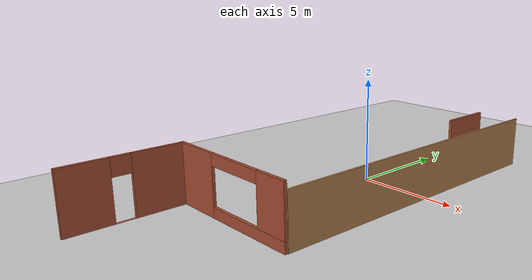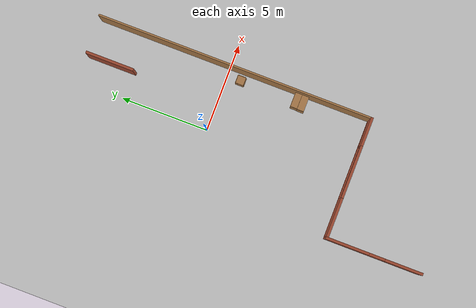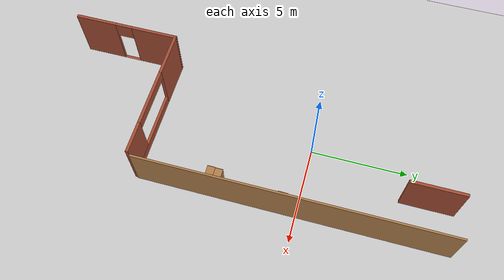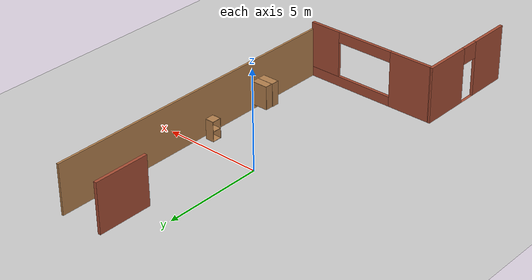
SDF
<sdf version="1.6">
 <world name="default">
  <model name="ground_plane">
   <static>1</static>
   <link name="link">
    <collision name="collision">
     <geometry><plane><normal>0 0 1</normal><size>100 100</size></plane></geometry>
     <friction><ode><mu>100</mu><mu2>50</mu2></ode></friction>
    </collision>
    <visual name="visual">
     <cast_shadows>0</cast_shadows>
     <geometry><plane><normal>0 0 1</normal><size>100 100</size></plane></geometry>
     <material>
      <script><uri>file://media/materials/scripts/gazebo.material</uri><name>Gazebo/Grey</name></script>
     </material>
    </visual>
   </link>
  </model>
  <gravity>0 0 -9.8</gravity>
  <magnetic_field>6e-06 2.3e-05 -4.2e-05</magnetic_field>
  <atmosphere type="adiabatic"/>
  <physics name="default_physics" default="0" type="ode">
   <real_time_update_rate>250</real_time_update_rate>
   <max_step_size>0.004</max_step_size>
   <real_time_factor>1</real_time_factor>
   <ode>
    <solver>
     <type>quick</type>
     <iters>150</iters>
     <precon_iters>0</precon_iters>
     <sor>1.4</sor>
     <use_dynamic_moi_rescaling>1</use_dynamic_moi_rescaling>
    </solver>
    <constraints>
     <cfm>1e-05</cfm>
     <erp>0.2</erp>
     <contact_max_correcting_vel>2000</contact_max_correcting_vel>
     <contact_surface_layer>0.01</contact_surface_layer>
    </constraints>
   </ode>
  </physics>
  <scene><ambient>0.4 0.4 0.4 1</ambient><background>0.7 0.7 0.7 1</background><shadows>1</shadows></scene>
  <spherical_coordinates>
   <surface_model>EARTH_WGS84</surface_model>
   <latitude_deg>25.0676548</latitude_deg>
   <longitude_deg>121.4563823</longitude_deg>
   <elevation>17.0</elevation>
   <heading_deg>0</heading_deg>
  </spherical_coordinates>
  <model name="cafe_room">
   <pose>0.165031 -6.85753 0 0 -0 0</pose>
   <link name="Wall_0">
    <pose>3.8e-05 -1.36625 0 0 -0 0.000649</pose>
    <visual name="Wall_0_Visual_0">
     <pose>-2.31327 0 1.425 0 -0 0</pose>
     <geometry><box><size>2.37346 0.15 2.85</size></box></geometry>
     <material>
      <script><uri>file://media/materials/scripts/gazebo.material</uri><name>Gazebo/Bricks</name></script>
      <ambient>0.309804 0.309804 0.309804 1</ambient>
     </material>
     <meta><layer>0</layer></meta>
    </visual>
    <collision name="Wall_0_Collision_0">
     <geometry><box><size>2.37346 0.15 2.85</size></box></geometry>
     <pose>-2.31327 0 1.425 0 -0 0</pose>
    </collision>
    <visual name="Wall_0_Visual_1">
     <pose>1.18673 0 0.25 0 -0 0</pose>
     <geometry><box><size>4.62654 0.15 0.5</size></box></geometry>
     <material>
      <script><uri>file://media/materials/scripts/gazebo.material</uri><name>Gazebo/Bricks</name></script>
      <ambient>0.309804 0.309804 0.309804 1</ambient>
     </material>
     <meta><layer>0</layer></meta>
    </visual>
    <collision name="Wall_0_Collision_1">
     <geometry><box><size>4.62654 0.15 0.5</size></box></geometry>
     <pose>1.18673 0 0.25 0 -0 0</pose>
    </collision>
    <visual name="Wall_0_Visual_2">
     <pose>2.68673 0 1.675 0 -0 0</pose>
     <geometry><box><size>1.62654 0.15 2.35</size></box></geometry>
     <material>
      <script><uri>file://media/materials/scripts/gazebo.material</uri><name>Gazebo/Bricks</name></script>
      <ambient>0.309804 0.309804 0.309804 1</ambient>
     </material>
     <meta><layer>0</layer></meta>
    </visual>
    <collision name="Wall_0_Collision_2">
     <geometry><box><size>1.62654 0.15 2.35</size></box></geometry>
     <pose>2.68673 0 1.675 0 -0 0</pose>
    </collision>
    <visual name="Wall_0_Visual_3">
     <pose>0.37346 0 2.575 0 -0 0</pose>
     <geometry><box><size>3 0.15 0.55</size></box></geometry>
     <material>
      <script><uri>file://media/materials/scripts/gazebo.material</uri><name>Gazebo/Bricks</name></script>
      <ambient>0.309804 0.309804 0.309804 1</ambient>
     </material>
     <meta><layer>0</layer></meta>
    </visual>
    <collision name="Wall_0_Collision_3">
     <geometry><box><size>3 0.15 0.55</size></box></geometry>
     <pose>0.37346 0 2.575 0 -0 0</pose>
    </collision>
   </link>
   <link name="Wall_3">
    <pose>-3.42303 -4.07547 0 0 -0 -1.57006</pose>
    <visual name="Wall_3_Visual_0">
     <pose>-1.53914 0 1.425 0 -0 0</pose>
     <geometry><box><size>2.48571 0.15 2.85</size></box></geometry>
     <material>
      <script><uri>file://media/materials/scripts/gazebo.material</uri><name>Gazebo/Bricks</name></script>
      <ambient>0.309804 0.309804 0.309804 1</ambient>
     </material>
     <meta><layer>0</layer></meta>
    </visual>
    <collision name="Wall_3_Collision_0">
     <geometry><box><size>2.48571 0.15 2.85</size></box></geometry>
     <pose>-1.53914 0 1.425 0 -0 0</pose>
    </collision>
    <visual name="Wall_3_Visual_1">
     <pose>1.69286 0 1.425 0 -0 0</pose>
     <geometry><box><size>2.17829 0.15 2.85</size></box></geometry>
     <material>
      <script><uri>file://media/materials/scripts/gazebo.material</uri><name>Gazebo/Bricks</name></script>
      <ambient>0.309804 0.309804 0.309804 1</ambient>
     </material>
     <meta><layer>0</layer></meta>
    </visual>
    <collision name="Wall_3_Collision_1">
     <geometry><box><size>2.17829 0.15 2.85</size></box></geometry>
     <pose>1.69286 0 1.425 0 -0 0</pose>
    </collision>
    <visual name="Wall_3_Visual_2">
     <pose>0.153711 0 0 0 -0 0</pose>
     <geometry><box><size>0.9 0.15 0</size></box></geometry>
     <material>
      <script><uri>file://media/materials/scripts/gazebo.material</uri><name>Gazebo/Bricks</name></script>
      <ambient>0.309804 0.309804 0.309804 1</ambient>
     </material>
     <meta><layer>0</layer></meta>
    </visual>
    <collision name="Wall_3_Collision_2">
     <geometry><box><size>0.9 0.15 0</size></box></geometry>
     <pose>0.153711 0 0 0 -0 0</pose>
    </collision>
    <visual name="Wall_3_Visual_3">
     <pose>0.153711 0 2.425 0 -0 0</pose>
     <geometry><box><size>0.9 0.15 0.85</size></box></geometry>
     <material>
      <script><uri>file://media/materials/scripts/gazebo.material</uri><name>Gazebo/Bricks</name></script>
      <ambient>0.309804 0.309804 0.309804 1</ambient>
     </material>
     <meta><layer>0</layer></meta>
    </visual>
    <collision name="Wall_3_Collision_3">
     <geometry><box><size>0.9 0.15 0.85</size></box></geometry>
     <pose>0.153711 0 2.425 0 -0 0</pose>
    </collision>
   </link>
   <static>1</static>
  </model>
  <light name="user_directional_light_1" type="directional">
   <pose>69.4265 -45.3011 1 0 -0 0</pose>
   <diffuse>0.5 0.5 0.5 1</diffuse>
   <specular>0.1 0.1 0.1 1</specular>
   <direction>0.1 0.1 -0.9</direction>
   <attenuation>
    <range>20</range>
    <constant>0.5</constant>
    <linear>0.01</linear>
    <quadratic>0.001</quadratic>
   </attenuation>
  </light>
  <light name="user_point_light_0" type="point">
   <pose>-1.19379 -7.98022 1 0 -0 0</pose>
   <diffuse>0.5 0.5 0.5 1</diffuse>
   <specular>0.1 0.1 0.1 1</specular>
   <attenuation>
    <range>20</range>
    <constant>0.5</constant>
    <linear>0.01</linear>
    <quadratic>0.001</quadratic>
   </attenuation>
   <cast_shadows>0</cast_shadows>
   <direction>0 0 -1</direction>
  </light>
  <light name="user_point_light_1" type="point">
   <pose>0.766851 -12.0385 1 0 -0 0</pose>
   <diffuse>0.5 0.5 0.5 1</diffuse>
   <specular>0.1 0.1 0.1 1</specular>
   <attenuation>
    <range>20</range>
    <constant>0.5</constant>
    <linear>0.01</linear>
    <quadratic>0.001</quadratic>
   </attenuation>
   <cast_shadows>0</cast_shadows>
   <direction>0 0 -1</direction>
  </light>
  <light name="user_directional_light_2" type="directional">
   <pose>2.85707 -5.47055 1 0 -0 0</pose>
   <diffuse>0.5 0.5 0.5 1</diffuse>
   <specular>0.1 0.1 0.1 1</specular>
   <direction>0.1 0.1 -0.9</direction>
   <attenuation>
    <range>20</range>
    <constant>0.5</constant>
    <linear>0.01</linear>
    <quadratic>0.001</quadratic>
   </attenuation>
  </light>
  <light name="user_point_light_2" type="point">
   <pose>-2.25143 -7.57347 1 0 -0 0</pose>
   <diffuse>0.5 0.5 0.5 1</diffuse>
   <specular>0.1 0.1 0.1 1</specular>
   <attenuation>
    <range>20</range>
    <constant>0.5</constant>
    <linear>0.01</linear>
    <quadratic>0.001</quadratic>
   </attenuation>
   <cast_shadows>0</cast_shadows>
   <direction>0 0 -1</direction>
  </light>
  <light name="user_point_light_3" type="point">
   <pose>2.80305 -7.84683 1 0 -0 0</pose>
   <diffuse>0.5 0.5 0.5 1</diffuse>
   <specular>0.1 0.1 0.1 1</specular>
   <attenuation>
    <range>20</range>
    <constant>0.5</constant>
    <linear>0.01</linear>
    <quadratic>0.001</quadratic>
   </attenuation>
   <cast_shadows>0</cast_shadows>
   <direction>0 0 -1</direction>
  </light>
  <light name="user_directional_light_3" type="directional">
   <pose>-3.4686 -9.00205 1 0 -0 0</pose>
   <diffuse>0.5 0.5 0.5 1</diffuse>
   <specular>0.1 0.1 0.1 1</specular>
   <direction>0.1 0.1 -0.9</direction>
   <attenuation>
    <range>20</range>
    <constant>0.5</constant>
    <linear>0.01</linear>
    <quadratic>0.001</quadratic>
   </attenuation>
  </light>
  <light name="user_directional_light_4" type="directional">
   <pose>2.30045 -0.072071 1 0 -0 0</pose>
   <diffuse>0.5 0.5 0.5 1</diffuse>
   <specular>0.1 0.1 0.1 1</specular>
   <direction>0.1 0.1 -0.9</direction>
   <attenuation>
    <range>20</range>
    <constant>0.5</constant>
    <linear>0.01</linear>
    <quadratic>0.001</quadratic>
   </attenuation>
  </light>
  <light name="user_point_light_4" type="point">
   <pose>0.076075 -5.91752 1 0 -0 0</pose>
   <diffuse>0.5 0.5 0.5 1</diffuse>
   <specular>0.1 0.1 0.1 1</specular>
   <attenuation>
    <range>20</range>
    <constant>0.5</constant>
    <linear>0.01</linear>
    <quadratic>0.001</quadratic>
   </attenuation>
   <cast_shadows>0</cast_shadows>
   <direction>0 0 -1</direction>
  </light>
  <light name="user_point_light_5" type="point">
   <pose>-4.36942 -10.4942 1 0 -0 0</pose>
   <diffuse>0.5 0.5 0.5 1</diffuse>
   <specular>0.1 0.1 0.1 1</specular>
   <attenuation>
    <range>20</range>
    <constant>0.5</constant>
    <linear>0.01</linear>
    <quadratic>0.001</quadratic>
   </attenuation>
   <cast_shadows>0</cast_shadows>
   <direction>0 0 -1</direction>
  </light>
  <light name="user_point_light_6" type="point">
   <pose>-3.92433 -9.26622 1 0 -0 0</pose>
   <diffuse>0.5 0.5 0.5 1</diffuse>
   <specular>0.1 0.1 0.1 1</specular>
   <attenuation>
    <range>20</range>
    <constant>0.5</constant>
    <linear>0.01</linear>
    <quadratic>0.001</quadratic>
   </attenuation>
   <cast_shadows>0</cast_shadows>
   <direction>0 0 -1</direction>
  </light>
  <light name="user_point_light_7" type="point">
   <pose>-3.73468 -12.8798 1 0 -0 0</pose>
   <diffuse>0.5 0.5 0.5 1</diffuse>
   <specular>0.1 0.1 0.1 1</specular>
   <attenuation>
    <range>20</range>
    <constant>0.5</constant>
    <linear>0.01</linear>
    <quadratic>0.001</quadratic>
   </attenuation>
   <cast_shadows>0</cast_shadows>
   <direction>0 0 -1</direction>
  </light>
  <light name="user_point_light_8" type="point">
   <pose>-3.8302 -8.15565 1 0 -0 0</pose>
   <diffuse>0.5 0.5 0.5 1</diffuse>
   <specular>0.1 0.1 0.1 1</specular>
   <attenuation>
    <range>20</range>
    <constant>0.5</constant>
    <linear>0.01</linear>
    <quadratic>0.001</quadratic>
   </attenuation>
   <cast_shadows>0</cast_shadows>
   <direction>0 0 -1</direction>
  </light>
  <model name="bookshelf">
   <static>1</static>
   <link name="link">
    <inertial><mass>1</mass></inertial>
    <collision name="back">
     <pose>0 0.005 0.6 0 -0 0</pose>
     <geometry><box><size>0.9 0.01 1.2</size></box></geometry>
    </collision>
    <visual name="visual1">
     <pose>0 0.005 0.6 0 -0 0</pose>
     <geometry><box><size>0.9 0.01 1.2</size></box></geometry>
     <material>
      <script><uri>file://media/materials/scripts/gazebo.material</uri><name>Gazebo/Wood</name></script>
     </material>
    </visual>
    <collision name="left_side">
     <pose>0.45 -0.195 0.6 0 -0 0</pose>
     <geometry><box><size>0.02 0.4 1.2</size></box></geometry>
    </collision>
    <visual name="visual2">
     <pose>0.45 -0.195 0.6 0 -0 0</pose>
     <geometry><box><size>0.02 0.4 1.2</size></box></geometry>
     <material>
      <script><uri>file://media/materials/scripts/gazebo.material</uri><name>Gazebo/Wood</name></script>
     </material>
    </visual>
    <collision name="right_side">
     <pose>-0.45 -0.195 0.6 0 -0 0</pose>
     <geometry><box><size>0.02 0.4 1.2</size></box></geometry>
    </collision>
    <visual name="visual3">
     <pose>-0.45 -0.195 0.6 0 -0 0</pose>
     <geometry><box><size>0.02 0.4 1.2</size></box></geometry>
     <material>
      <script><uri>file://media/materials/scripts/gazebo.material</uri><name>Gazebo/Wood</name></script>
     </material>
    </visual>
    <collision name="bottom">
     <pose>0 -0.195 0.03 0 -0 0</pose>
     <geometry><box><size>0.88 0.4 0.06</size></box></geometry>
    </collision>
    <visual name="visual4">
     <pose>0 -0.195 0.03 0 -0 0</pose>
     <geometry><box><size>0.88 0.4 0.06</size></box></geometry>
     <material>
      <script><uri>file://media/materials/scripts/gazebo.material</uri><name>Gazebo/Wood</name></script>
     </material>
    </visual>
    <collision name="top">
     <pose>0 -0.195 1.19 0 -0 0</pose>
     <geometry><box><size>0.88 0.4 0.02</size></box></geometry>
    </collision>
    <visual name="visual5">
     <pose>0 -0.195 1.19 0 -0 0</pose>
     <geometry><box><size>0.88 0.4 0.02</size></box></geometry>
     <material>
      <script><uri>file://media/materials/scripts/gazebo.material</uri><name>Gazebo/Wood</name></script>
     </material>
    </visual>
    <collision name="low_shelf">
     <pose>0 -0.195 0.43 0 -0 0</pose>
     <geometry><box><size>0.88 0.4 0.02</size></box></geometry>
    </collision>
    <visual name="visual6">
     <pose>0 -0.195 0.43 0 -0 0</pose>
     <geometry><box><size>0.88 0.4 0.02</size></box></geometry>
     <material>
      <script><uri>file://media/materials/scripts/gazebo.material</uri><name>Gazebo/Wood</name></script>
     </material>
    </visual>
    <collision name="high_shelf">
     <pose>0 -0.195 0.8 0 -0 0</pose>
     <geometry><box><size>0.88 0.4 0.02</size></box></geometry>
    </collision>
    <visual name="visual7">
     <pose>0 -0.195 0.8 0 -0 0</pose>
     <geometry><box><size>0.88 0.4 0.02</size></box></geometry>
     <material>
      <script><uri>file://media/materials/scripts/gazebo.material</uri><name>Gazebo/Wood</name></script>
     </material>
    </visual>
   </link>
   <pose>3.20033 -4.26028 0.271039 0 -0 0</pose>
  </model>
  <model name="bookshelf_clone">
   <static>1</static>
   <link name="link">
    <inertial><mass>1</mass></inertial>
    <collision name="back">
     <pose>0 0.005 0.6 0 -0 0</pose>
     <geometry><box><size>0.9 0.01 1.2</size></box></geometry>
    </collision>
    <visual name="visual1">
     <pose>0 0.005 0.6 0 -0 0</pose>
     <geometry><box><size>0.9 0.01 1.2</size></box></geometry>
     <material>
      <script><uri>file://media/materials/scripts/gazebo.material</uri><name>Gazebo/Wood</name></script>
     </material>
    </visual>
    <collision name="left_side">
     <pose>0.45 -0.195 0.6 0 -0 0</pose>
     <geometry><box><size>0.02 0.4 1.2</size></box></geometry>
    </collision>
    <visual name="visual2">
     <pose>0.45 -0.195 0.6 0 -0 0</pose>
     <geometry><box><size>0.02 0.4 1.2</size></box></geometry>
     <material>
      <script><uri>file://media/materials/scripts/gazebo.material</uri><name>Gazebo/Wood</name></script>
     </material>
    </visual>
    <collision name="right_side">
     <pose>-0.45 -0.195 0.6 0 -0 0</pose>
     <geometry><box><size>0.02 0.4 1.2</size></box></geometry>
    </collision>
    <visual name="visual3">
     <pose>-0.45 -0.195 0.6 0 -0 0</pose>
     <geometry><box><size>0.02 0.4 1.2</size></box></geometry>
     <material>
      <script><uri>file://media/materials/scripts/gazebo.material</uri><name>Gazebo/Wood</name></script>
     </material>
    </visual>
    <collision name="bottom">
     <pose>0 -0.195 0.03 0 -0 0</pose>
     <geometry><box><size>0.88 0.4 0.06</size></box></geometry>
    </collision>
    <visual name="visual4">
     <pose>0 -0.195 0.03 0 -0 0</pose>
     <geometry><box><size>0.88 0.4 0.06</size></box></geometry>
     <material>
      <script><uri>file://media/materials/scripts/gazebo.material</uri><name>Gazebo/Wood</name></script>
     </material>
    </visual>
    <collision name="top">
     <pose>0 -0.195 1.19 0 -0 0</pose>
     <geometry><box><size>0.88 0.4 0.02</size></box></geometry>
    </collision>
    <visual name="visual5">
     <pose>0 -0.195 1.19 0 -0 0</pose>
     <geometry><box><size>0.88 0.4 0.02</size></box></geometry>
     <material>
      <script><uri>file://media/materials/scripts/gazebo.material</uri><name>Gazebo/Wood</name></script>
     </material>
    </visual>
    <collision name="low_shelf">
     <pose>0 -0.195 0.43 0 -0 0</pose>
     <geometry><box><size>0.88 0.4 0.02</size></box></geometry>
    </collision>
    <visual name="visual6">
     <pose>0 -0.195 0.43 0 -0 0</pose>
     <geometry><box><size>0.88 0.4 0.02</size></box></geometry>
     <material>
      <script><uri>file://media/materials/scripts/gazebo.material</uri><name>Gazebo/Wood</name></script>
     </material>
    </visual>
    <collision name="high_shelf">
     <pose>0 -0.195 0.8 0 -0 0</pose>
     <geometry><box><size>0.88 0.4 0.02</size></box></geometry>
    </collision>
    <visual name="visual7">
     <pose>0 -0.195 0.8 0 -0 0</pose>
     <geometry><box><size>0.88 0.4 0.02</size></box></geometry>
     <material>
      <script><uri>file://media/materials/scripts/gazebo.material</uri><name>Gazebo/Wood</name></script>
     </material>
    </visual>
   </link>
   <pose>3.22029 -3.86837 0.271039 0 -0 0</pose>
  </model>
  <model name="cabinet">
   <static>1</static>
   <link name="cabinet_bottom_plate">
    <inertial>
     <pose>0 0 -1 0 -0 0</pose>
     <inertia><ixx>2.05</ixx><ixy>0</ixy><ixz>0</ixz><iyy>2.05</iyy><iyz>0</iyz><izz>2.05</izz></inertia>
     <mass>25</mass>
    </inertial>
    <collision name="cabinet_bottom_plate_geom">
     <pose>0 0 0.01 0 -0 0</pose>
     <geometry><box><size>0.45 0.45 0.02</size></box></geometry>
    </collision>
    <visual name="cabinet_bottom_plate_geom_visual">
     <pose>0 0 0.01 0 -0 0</pose>
     <geometry><box><size>0.45 0.45 0.02</size></box></geometry>
     <material>
      <script><uri>file://media/materials/scripts/gazebo.material</uri><name>Gazebo/Wood</name></script>
     </material>
    </visual>
    <collision name="cabinet_bottom_plate_geom_cabinet_back_plate">
     <pose>0.235 0 0.51 0 -0 0</pose>
     <geometry><box><size>0.02 0.45 1.02</size></box></geometry>
    </collision>
    <visual name="cabinet_bottom_plate_geom_cabinet_back_plate_visual">
     <pose>0.235 0 0.51 0 -0 0</pose>
     <geometry><box><size>0.02 0.45 1.02</size></box></geometry>
     <material>
      <script><uri>file://media/materials/scripts/gazebo.material</uri><name>Gazebo/Wood</name></script>
     </material>
    </visual>
    <collision name="cabinet_bottom_plate_geom_cabinet_left_plate">
     <pose>0 0.235 0.51 0 -0 0</pose>
     <geometry><box><size>0.45 0.02 1.02</size></box></geometry>
    </collision>
    <visual name="cabinet_bottom_plate_geom_cabinet_left_plate_visual">
     <pose>0 0.235 0.51 0 -0 0</pose>
     <geometry><box><size>0.45 0.02 1.02</size></box></geometry>
     <material>
      <script><uri>file://media/materials/scripts/gazebo.material</uri><name>Gazebo/Wood</name></script>
     </material>
    </visual>
    <collision name="cabinet_bottom_plate_geom_cabinet_middle_plate">
     <pose>0 0 0.51 0 -0 0</pose>
     <geometry><box><size>0.45 0.45 0.02</size></box></geometry>
    </collision>
    <visual name="cabinet_bottom_plate_geom_cabinet_middle_plate_visual">
     <pose>0 0 0.51 0 -0 0</pose>
     <geometry><box><size>0.45 0.45 0.02</size></box></geometry>
     <material>
      <script><uri>file://media/materials/scripts/gazebo.material</uri><name>Gazebo/Wood</name></script>
     </material>
    </visual>
    <collision name="cabinet_bottom_plate_geom_cabinet_right_plate">
     <pose>0 -0.235 0.51 0 -0 0</pose>
     <geometry><box><size>0.45 0.02 1.02</size></box></geometry>
    </collision>
    <visual name="cabinet_bottom_plate_geom_cabinet_right_plate_visual">
     <pose>0 -0.235 0.51 0 -0 0</pose>
     <geometry><box><size>0.45 0.02 1.02</size></box></geometry>
     <material>
      <script><uri>file://media/materials/scripts/gazebo.material</uri><name>Gazebo/Wood</name></script>
     </material>
    </visual>
    <collision name="cabinet_bottom_plate_geom_cabinet_top_plate">
     <pose>0 0 1.01 0 -0 0</pose>
     <geometry><box><size>0.45 0.45 0.02</size></box></geometry>
    </collision>
    <visual name="cabinet_bottom_plate_geom_cabinet_top_plate_visual">
     <pose>0 0 1.01 0 -0 0</pose>
     <geometry><box><size>0.45 0.45 0.02</size></box></geometry>
     <material>
      <script><uri>file://media/materials/scripts/gazebo.material</uri><name>Gazebo/Wood</name></script>
     </material>
    </visual>
   </link>
   <pose>3.18421 -0.807099 0 0 -0 0</pose>
  </model>
  <model name="Untitled">
   <pose>1.85235 -0.28035 0 0 -0 0</pose>
   <link name="Wall_10">
    <collision name="Wall_10_Collision">
     <geometry><box><size>2.75 0.15 2.5</size></box></geometry>
     <pose>0 0 1.25 0 -0 0</pose>
    </collision>
    <visual name="Wall_10_Visual">
     <pose>0 0 1.25 0 -0 0</pose>
     <geometry><box><size>2.75 0.15 2.5</size></box></geometry>
     <material>
      <script><uri>file://media/materials/scripts/gazebo.material</uri><name>Gazebo/Bricks</name></script>
      <ambient>1 1 1 1</ambient>
     </material>
     <meta><layer>0</layer></meta>
    </visual>
    <pose>-0.333164 6.4203 0 0 -0 -1.5708</pose>
   </link>
   <link name="Wall_4">
    <collision name="Wall_4_Collision">
     <geometry><box><size>15.75 0.1 2.5</size></box></geometry>
     <pose>0 0 1.25 0 -0 0</pose>
    </collision>
    <visual name="Wall_4_Visual">
     <pose>0 0 1.25 0 -0 0</pose>
     <geometry><box><size>15.75 0.1 2.5</size></box></geometry>
     <material>
      <script><uri>file://media/materials/scripts/gazebo.material</uri><name>Gazebo/Wood</name></script>
      <ambient>1 1 1 1</ambient>
     </material>
     <meta><layer>0</layer></meta>
    </visual>
    <pose>1.80235 -0 0 0 -0 -1.5708</pose>
   </link>
   <static>1</static>
  </model>
 </world>
</sdf>
